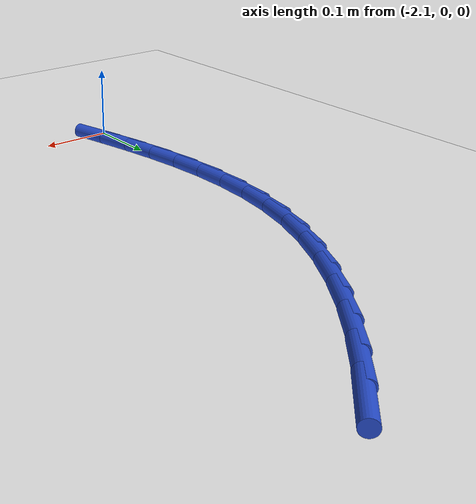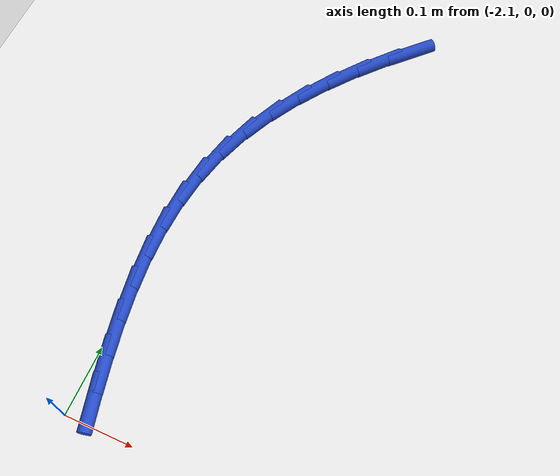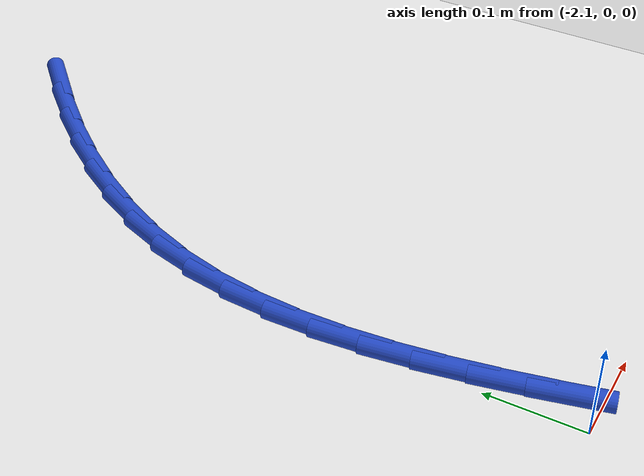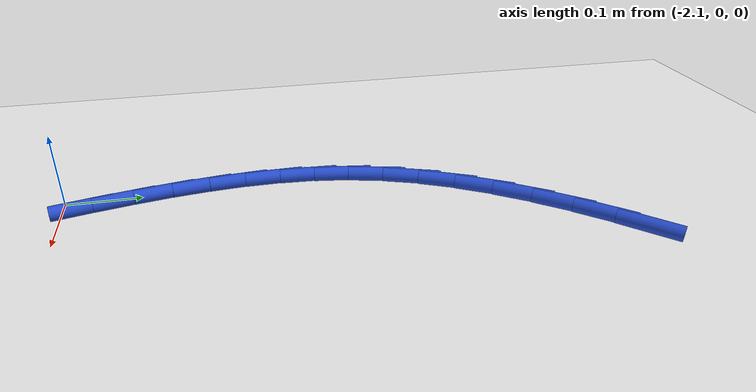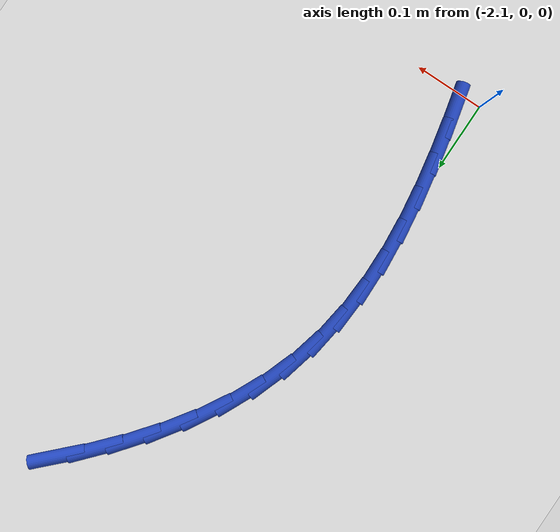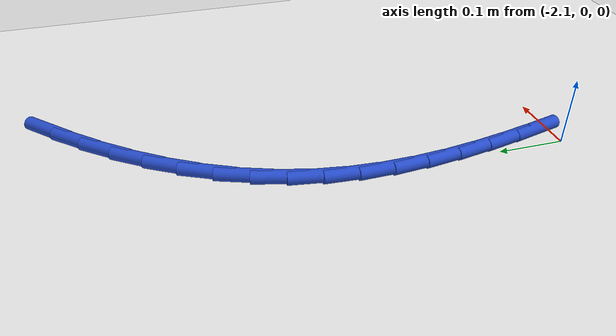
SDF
<sdf version="1.6">
 <world name="default">
  <model name="ground_plane">
   <static>1</static>
   <link name="link">
    <collision name="collision">
     <geometry><plane><normal>0 0 1</normal><size>100 100</size></plane></geometry>
     <surface><friction><ode><mu>100</mu><mu2>50</mu2></ode></friction></surface>
    </collision>
    <visual name="visual">
     <cast_shadows>0</cast_shadows>
     <geometry><plane><normal>0 0 1</normal><size>100 100</size></plane></geometry>
     <material>
      <script><uri>file://media/materials/scripts/gazebo.material</uri><name>Gazebo/WhiteGlow</name></script>
     </material>
    </visual>
   </link>
  </model>
  <model name="line">
   <link name="link_50">
    <pose>-1.8834054722684328 0.7213948378686142 0.01 0 1.57 0.7884428663834695</pose>
    <collision name="collision">
     <geometry><cylinder><radius>0.01</radius><length>0.08</length></cylinder></geometry>
    </collision>
    <visual name="visual">
     <material>
      <script><name>Gazebo/Blue</name><uri>file://media/materials/scripts/gazebo.material</uri></script>
     </material>
     <geometry><cylinder><radius>0.01</radius><length>0.08</length></cylinder></geometry>
    </visual>
   </link>
   <link name="link_51">
    <pose>-1.9215056885239516 0.6830619046555648 0.01 0 1.57 0.8432272312269156</pose>
    <collision name="collision">
     <geometry><cylinder><radius>0.01</radius><length>0.08</length></cylinder></geometry>
    </collision>
    <visual name="visual">
     <material>
      <script><name>Gazebo/Blue</name><uri>file://media/materials/scripts/gazebo.material</uri></script>
     </material>
     <geometry><cylinder><radius>0.01</radius><length>0.08</length></cylinder></geometry>
    </visual>
   </link>
   <link name="link_52">
    <pose>-1.9573260517739541 0.6428391289531524 0.01 0 1.57 0.9033133280179535</pose>
    <collision name="collision">
     <geometry><cylinder><radius>0.01</radius><length>0.08</length></cylinder></geometry>
    </collision>
    <visual name="visual">
     <material>
      <script><name>Gazebo/Blue</name><uri>file://media/materials/scripts/gazebo.material</uri></script>
     </material>
     <geometry><cylinder><radius>0.01</radius><length>0.08</length></cylinder></geometry>
    </visual>
   </link>
   <link name="link_53">
    <pose>-1.990345564444136 0.6009449918804922 0.01 0 1.57 0.9701307349600587</pose>
    <collision name="collision">
     <geometry><cylinder><radius>0.01</radius><length>0.08</length></cylinder></geometry>
    </collision>
    <visual name="visual">
     <material>
      <script><name>Gazebo/Blue</name><uri>file://media/materials/scripts/gazebo.material</uri></script>
     </material>
     <geometry><cylinder><radius>0.01</radius><length>0.08</length></cylinder></geometry>
    </visual>
   </link>
   <link name="link_54">
    <pose>-2.0200432289601893 0.5575979745566979 0.01 0 1.57 1.0452528633745142</pose>
    <collision name="collision">
     <geometry><cylinder><radius>0.01</radius><length>0.08</length></cylinder></geometry>
    </collision>
    <visual name="visual">
     <material>
      <script><name>Gazebo/Blue</name><uri>file://media/materials/scripts/gazebo.material</uri></script>
     </material>
     <geometry><cylinder><radius>0.01</radius><length>0.08</length></cylinder></geometry>
    </visual>
   </link>
   <link name="link_55">
    <pose>-2.0458980477478077 0.5130165581008845 0.01 0 1.57 1.130354105160776</pose>
    <collision name="collision">
     <geometry><cylinder><radius>0.01</radius><length>0.08</length></cylinder></geometry>
    </collision>
    <visual name="visual">
     <material>
      <script><name>Gazebo/Blue</name><uri>file://media/materials/scripts/gazebo.material</uri></script>
     </material>
     <geometry><cylinder><radius>0.01</radius><length>0.08</length></cylinder></geometry>
    </visual>
   </link>
   <link name="link_56">
    <pose>-2.067389023232686 0.46741922363216726 0.01 0 1.57 1.2270330572275765</pose>
    <collision name="collision">
     <geometry><cylinder><radius>0.01</radius><length>0.08</length></cylinder></geometry>
    </collision>
    <visual name="visual">
     <material>
      <script><name>Gazebo/Blue</name><uri>file://media/materials/scripts/gazebo.material</uri></script>
     </material>
     <geometry><cylinder><radius>0.01</radius><length>0.08</length></cylinder></geometry>
    </visual>
   </link>
   <link name="link_57">
    <pose>-2.0839974441558398 0.4210239679780964 0.01 0 1.57 1.3307049182381643</pose>
    <collision name="collision">
     <geometry><cylinder><radius>0.01</radius><length>0.08</length></cylinder></geometry>
    </collision>
    <visual name="visual">
     <material>
      <script><name>Gazebo/Blue</name><uri>file://media/materials/scripts/gazebo.material</uri></script>
     </material>
     <geometry><cylinder><radius>0.01</radius><length>0.08</length></cylinder></geometry>
    </visual>
   </link>
   <link name="link_58">
    <pose>-2.0955136319695926 0.3739833280825193 0.01 0 1.57 1.4284158959058113</pose>
    <collision name="collision">
     <geometry><cylinder><radius>0.01</radius><length>0.08</length></cylinder></geometry>
    </collision>
    <visual name="visual">
     <material>
      <script><name>Gazebo/Blue</name><uri>file://media/materials/scripts/gazebo.material</uri></script>
     </material>
     <geometry><cylinder><radius>0.01</radius><length>0.08</length></cylinder></geometry>
    </visual>
   </link>
   <link name="link_59">
    <pose>-2.1023463562550035 0.3263188400563555 0.01 0 1.57 1.5163437555312766</pose>
    <collision name="collision">
     <geometry><cylinder><radius>0.01</radius><length>0.08</length></cylinder></geometry>
    </collision>
    <visual name="visual">
     <material>
      <script><name>Gazebo/Blue</name><uri>file://media/materials/scripts/gazebo.material</uri></script>
     </material>
     <geometry><cylinder><radius>0.01</radius><length>0.08</length></cylinder></geometry>
    </visual>
   </link>
   <link name="link_60">
    <pose>-2.104978058965558 0.2780364345915688 0.01 0 1.57 -1.5485709161772658</pose>
    <collision name="collision">
     <geometry><cylinder><radius>0.01</radius><length>0.08</length></cylinder></geometry>
    </collision>
    <visual name="visual">
     <material>
      <script><name>Gazebo/Blue</name><uri>file://media/materials/scripts/gazebo.material</uri></script>
     </material>
     <geometry><cylinder><radius>0.01</radius><length>0.08</length></cylinder></geometry>
    </visual>
   </link>
   <link name="link_61">
    <pose>-2.103891182054743 0.22914204238012162 0.01 0 1.57 -1.4836845091577737</pose>
    <collision name="collision">
     <geometry><cylinder><radius>0.01</radius><length>0.08</length></cylinder></geometry>
    </collision>
    <visual name="visual">
     <material>
      <script><name>Gazebo/Blue</name><uri>file://media/materials/scripts/gazebo.material</uri></script>
     </material>
     <geometry><cylinder><radius>0.01</radius><length>0.08</length></cylinder></geometry>
    </visual>
   </link>
   <link name="link_62">
    <pose>-2.0995681674760442 0.17964159411397673 0.01 0 1.57 -1.4304745418197056</pose>
    <collision name="collision">
     <geometry><cylinder><radius>0.01</radius><length>0.08</length></cylinder></geometry>
    </collision>
    <visual name="visual">
     <material>
      <script><name>Gazebo/Blue</name><uri>file://media/materials/scripts/gazebo.material</uri></script>
     </material>
     <geometry><cylinder><radius>0.01</radius><length>0.08</length></cylinder></geometry>
    </visual>
   </link>
   <link name="link_63">
    <pose>-2.0924914571829483 0.12954102048509755 0.01 0 1.57 -1.3884476521854394</pose>
    <collision name="collision">
     <geometry><cylinder><radius>0.01</radius><length>0.08</length></cylinder></geometry>
    </collision>
    <visual name="visual">
     <material>
      <script><name>Gazebo/Blue</name><uri>file://media/materials/scripts/gazebo.material</uri></script>
     </material>
     <geometry><cylinder><radius>0.01</radius><length>0.08</length></cylinder></geometry>
    </visual>
   </link>
   <link name="link_64">
    <pose>-2.083143493128942 0.0788462521854475 0.01 0 1.57 -1.3569536791489942</pose>
    <collision name="collision">
     <geometry><cylinder><radius>0.01</radius><length>0.08</length></cylinder></geometry>
    </collision>
    <visual name="visual">
     <material>
      <script><name>Gazebo/Blue</name><uri>file://media/materials/scripts/gazebo.material</uri></script>
     </material>
     <geometry><cylinder><radius>0.01</radius><length>0.08</length></cylinder></geometry>
    </visual>
   </link>
   <link name="link_65">
    <pose>-2.072006717267511 0.02756321990698922 0.01 0 1.57 -1.3353341515037949</pose>
    <collision name="collision">
     <geometry><cylinder><radius>0.01</radius><length>0.08</length></cylinder></geometry>
    </collision>
    <visual name="visual">
     <material>
      <script><name>Gazebo/Blue</name><uri>file://media/materials/scripts/gazebo.material</uri></script>
     </material>
     <geometry><cylinder><radius>0.01</radius><length>0.08</length></cylinder></geometry>
    </visual>
   </link>
  </model>
 </world>
</sdf>
